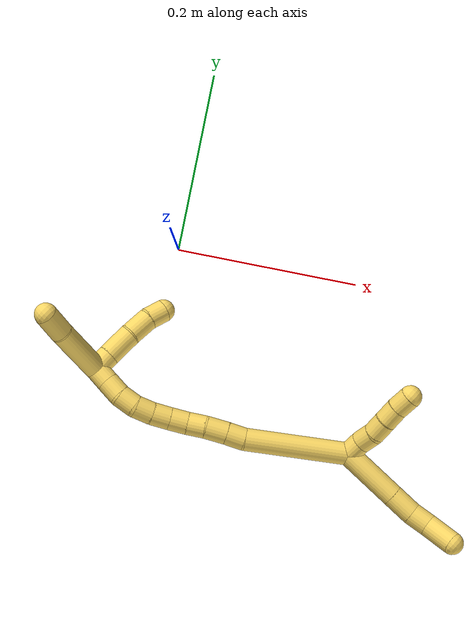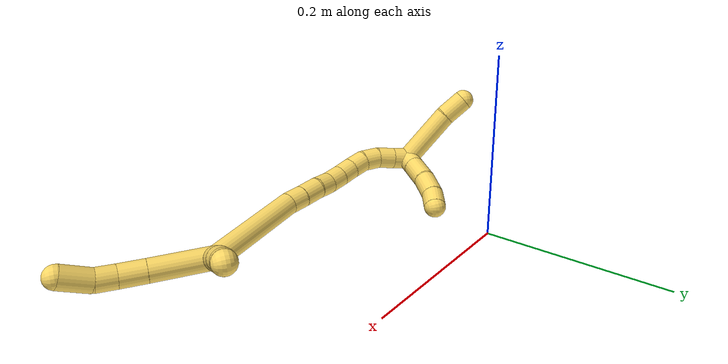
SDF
<sdf version="1.7">
 <world name="default">
  <model name="5">
   <static>0</static>
   <link name="5">
    <collision name="collision-cylinder-e_1_2_8">
     <pose>-0.00032 0.000228 0.033165 -0.00687 -0.009641 3.3e-05</pose>
     <geometry><cylinder><radius>0.0125</radius><length>0.066334</length></cylinder></geometry>
     <surface>
      <friction><ode><mu>1.16</mu><mu2>1.16</mu2><slip1>0</slip1><slip2>0</slip2></ode></friction>
      <contact><ode><kp>1e+06</kp><kd>1</kd><max_vel>0</max_vel><min_depth>0.001</min_depth></ode></contact>
     </surface>
    </collision>
    <visual name="visual-cylinder-e_1_2_8">
     <pose>-0.00032 0.000228 0.033165 -0.00687 -0.009641 3.3e-05</pose>
     <geometry><cylinder><radius>0.0125</radius><length>0.066334</length></cylinder></geometry>
     <material><ambient>1 0.858824 0.4 1</ambient></material>
    </visual>
    <collision name="collision-cylinder-e_2_8_9">
     <pose>-0.000904 0.000712 0.080444 -0.018134 -0.018731 0.00017</pose>
     <geometry><cylinder><radius>0.0125</radius><length>0.028238</length></cylinder></geometry>
     <surface>
      <friction><ode><mu>1.16</mu><mu2>1.16</mu2><slip1>0</slip1><slip2>0</slip2></ode></friction>
      <contact><ode><kp>1e+06</kp><kd>1</kd><max_vel>0</max_vel><min_depth>0.001</min_depth></ode></contact>
     </surface>
    </collision>
    <visual name="visual-cylinder-e_2_8_9">
     <pose>-0.000904 0.000712 0.080444 -0.018134 -0.018731 0.00017</pose>
     <geometry><cylinder><radius>0.0125</radius><length>0.028238</length></cylinder></geometry>
     <material><ambient>1 0.858824 0.4 1</ambient></material>
    </visual>
    <collision name="collision-cylinder-e_3_9_10">
     <pose>-0.001224 0.002863 0.105428 -0.172597 -0.005031 0.000435</pose>
     <geometry><cylinder><radius>0.0125</radius><length>0.022068</length></cylinder></geometry>
     <surface>
      <friction><ode><mu>1.16</mu><mu2>1.16</mu2><slip1>0</slip1><slip2>0</slip2></ode></friction>
      <contact><ode><kp>1e+06</kp><kd>1</kd><max_vel>0</max_vel><min_depth>0.001</min_depth></ode></contact>
     </surface>
    </collision>
    <visual name="visual-cylinder-e_3_9_10">
     <pose>-0.001224 0.002863 0.105428 -0.172597 -0.005031 0.000435</pose>
     <geometry><cylinder><radius>0.0125</radius><length>0.022068</length></cylinder></geometry>
     <material><ambient>1 0.858824 0.4 1</ambient></material>
    </visual>
    <collision name="collision-cylinder-e_4_10_6">
     <pose>-0.005344 0.010131 0.131556 -0.33861 -0.246154 0.042285</pose>
     <geometry><cylinder><radius>0.0125</radius><length>0.03336</length></cylinder></geometry>
     <surface>
      <friction><ode><mu>1.16</mu><mu2>1.16</mu2><slip1>0</slip1><slip2>0</slip2></ode></friction>
      <contact><ode><kp>1e+06</kp><kd>1</kd><max_vel>0</max_vel><min_depth>0.001</min_depth></ode></contact>
     </surface>
    </collision>
    <visual name="visual-cylinder-e_4_10_6">
     <pose>-0.005344 0.010131 0.131556 -0.33861 -0.246154 0.042285</pose>
     <geometry><cylinder><radius>0.0125</radius><length>0.03336</length></cylinder></geometry>
     <material><ambient>1 0.858824 0.4 1</ambient></material>
    </visual>
    <collision name="collision-cylinder-e_1_2_11">
     <pose>0.003206 0.009455 0.000574 -1.51018 0.326362 -0.307467</pose>
     <geometry><cylinder><radius>0.0125</radius><length>0.02</length></cylinder></geometry>
     <surface>
      <friction><ode><mu>1.16</mu><mu2>1.16</mu2><slip1>0</slip1><slip2>0</slip2></ode></friction>
      <contact><ode><kp>1e+06</kp><kd>1</kd><max_vel>0</max_vel><min_depth>0.001</min_depth></ode></contact>
     </surface>
    </collision>
    <visual name="visual-cylinder-e_1_2_11">
     <pose>0.003206 0.009455 0.000574 -1.51018 0.326362 -0.307467</pose>
     <geometry><cylinder><radius>0.0125</radius><length>0.02</length></cylinder></geometry>
     <material><ambient>1 0.858824 0.4 1</ambient></material>
    </visual>
    <collision name="collision-cylinder-e_2_11_12">
     <pose>0.007165 0.028753 0.002742 -1.41022 0.075407 -0.064185</pose>
     <geometry><cylinder><radius>0.0125</radius><length>0.02</length></cylinder></geometry>
     <surface>
      <friction><ode><mu>1.16</mu><mu2>1.16</mu2><slip1>0</slip1><slip2>0</slip2></ode></friction>
      <contact><ode><kp>1e+06</kp><kd>1</kd><max_vel>0</max_vel><min_depth>0.001</min_depth></ode></contact>
     </surface>
    </collision>
    <visual name="visual-cylinder-e_2_11_12">
     <pose>0.007165 0.028753 0.002742 -1.41022 0.075407 -0.064185</pose>
     <geometry><cylinder><radius>0.0125</radius><length>0.02</length></cylinder></geometry>
     <material><ambient>1 0.858824 0.4 1</ambient></material>
    </visual>
    <collision name="collision-cylinder-e_3_12_13">
     <pose>0.010162 0.048337 0.004065 -1.59865 0.226269 -0.232603</pose>
     <geometry><cylinder><radius>0.0125</radius><length>0.02</length></cylinder></geometry>
     <surface>
      <friction><ode><mu>1.16</mu><mu2>1.16</mu2><slip1>0</slip1><slip2>0</slip2></ode></friction>
      <contact><ode><kp>1e+06</kp><kd>1</kd><max_vel>0</max_vel><min_depth>0.001</min_depth></ode></contact>
     </surface>
    </collision>
    <visual name="visual-cylinder-e_3_12_13">
     <pose>0.010162 0.048337 0.004065 -1.59865 0.226269 -0.232603</pose>
     <geometry><cylinder><radius>0.0125</radius><length>0.02</length></cylinder></geometry>
     <material><ambient>1 0.858824 0.4 1</ambient></material>
    </visual>
    <collision name="collision-cylinder-e_4_13_14">
     <pose>0.01541 0.067613 0.00354 -1.59732 0.30514 -0.313212</pose>
     <geometry><cylinder><radius>0.0125</radius><length>0.02</length></cylinder></geometry>
     <surface>
      <friction><ode><mu>1.16</mu><mu2>1.16</mu2><slip1>0</slip1><slip2>0</slip2></ode></friction>
      <contact><ode><kp>1e+06</kp><kd>1</kd><max_vel>0</max_vel><min_depth>0.001</min_depth></ode></contact>
     </surface>
    </collision>
    <visual name="visual-cylinder-e_4_13_14">
     <pose>0.01541 0.067613 0.00354 -1.59732 0.30514 -0.313212</pose>
     <geometry><cylinder><radius>0.0125</radius><length>0.02</length></cylinder></geometry>
     <material><ambient>1 0.858824 0.4 1</ambient></material>
    </visual>
    <collision name="collision-cylinder-e_5_14_5">
     <pose>0.021038 0.086767 0.004064 -1.49028 0.265473 -0.245129</pose>
     <geometry><cylinder><radius>0.0125</radius><length>0.02</length></cylinder></geometry>
     <surface>
      <friction><ode><mu>1.16</mu><mu2>1.16</mu2><slip1>0</slip1><slip2>0</slip2></ode></friction>
      <contact><ode><kp>1e+06</kp><kd>1</kd><max_vel>0</max_vel><min_depth>0.001</min_depth></ode></contact>
     </surface>
    </collision>
    <visual name="visual-cylinder-e_5_14_5">
     <pose>0.021038 0.086767 0.004064 -1.49028 0.265473 -0.245129</pose>
     <geometry><cylinder><radius>0.0125</radius><length>0.02</length></cylinder></geometry>
     <material><ambient>1 0.858824 0.4 1</ambient></material>
    </visual>
    <collision name="collision-cylinder-e_1_2_15">
     <pose>-0.025436 -0.021645 -0.046988 2.70992 -0.456958 -1.6296</pose>
     <geometry><cylinder><radius>0.0125</radius><length>0.115298</length></cylinder></geometry>
     <surface>
      <friction><ode><mu>1.16</mu><mu2>1.16</mu2><slip1>0</slip1><slip2>0</slip2></ode></friction>
      <contact><ode><kp>1e+06</kp><kd>1</kd><max_vel>0</max_vel><min_depth>0.001</min_depth></ode></contact>
     </surface>
    </collision>
    <visual name="visual-cylinder-e_1_2_15">
     <pose>-0.025436 -0.021645 -0.046988 2.70992 -0.456958 -1.6296</pose>
     <geometry><cylinder><radius>0.0125</radius><length>0.115298</length></cylinder></geometry>
     <material><ambient>1 0.858824 0.4 1</ambient></material>
    </visual>
    <collision name="collision-cylinder-e_2_15_16">
     <pose>-0.054164 -0.046039 -0.103298 2.85482 -0.326646 -1.70265</pose>
     <geometry><cylinder><radius>0.0125</radius><length>0.02052</length></cylinder></geometry>
     <surface>
      <friction><ode><mu>1.16</mu><mu2>1.16</mu2><slip1>0</slip1><slip2>0</slip2></ode></friction>
      <contact><ode><kp>1e+06</kp><kd>1</kd><max_vel>0</max_vel><min_depth>0.001</min_depth></ode></contact>
     </surface>
    </collision>
    <visual name="visual-cylinder-e_2_15_16">
     <pose>-0.054164 -0.046039 -0.103298 2.85482 -0.326646 -1.70265</pose>
     <geometry><cylinder><radius>0.0125</radius><length>0.02052</length></cylinder></geometry>
     <material><ambient>1 0.858824 0.4 1</ambient></material>
    </visual>
    <collision name="collision-cylinder-e_3_16_17">
     <pose>-0.061595 -0.052323 -0.123199 2.81917 -0.355282 -1.66958</pose>
     <geometry><cylinder><radius>0.0125</radius><length>0.023797</length></cylinder></geometry>
     <surface>
      <friction><ode><mu>1.16</mu><mu2>1.16</mu2><slip1>0</slip1><slip2>0</slip2></ode></friction>
      <contact><ode><kp>1e+06</kp><kd>1</kd><max_vel>0</max_vel><min_depth>0.001</min_depth></ode></contact>
     </surface>
    </collision>
    <visual name="visual-cylinder-e_3_16_17">
     <pose>-0.061595 -0.052323 -0.123199 2.81917 -0.355282 -1.66958</pose>
     <geometry><cylinder><radius>0.0125</radius><length>0.023797</length></cylinder></geometry>
     <material><ambient>1 0.858824 0.4 1</ambient></material>
    </visual>
    <collision name="collision-cylinder-e_4_17_18">
     <pose>-0.068604 -0.060222 -0.142324 2.66937 -0.290635 -1.09295</pose>
     <geometry><cylinder><radius>0.0125</radius><length>0.020028</length></cylinder></geometry>
     <surface>
      <friction><ode><mu>1.16</mu><mu2>1.16</mu2><slip1>0</slip1><slip2>0</slip2></ode></friction>
      <contact><ode><kp>1e+06</kp><kd>1</kd><max_vel>0</max_vel><min_depth>0.001</min_depth></ode></contact>
     </surface>
    </collision>
    <visual name="visual-cylinder-e_4_17_18">
     <pose>-0.068604 -0.060222 -0.142324 2.66937 -0.290635 -1.09295</pose>
     <geometry><cylinder><radius>0.0125</radius><length>0.020028</length></cylinder></geometry>
     <material><ambient>1 0.858824 0.4 1</ambient></material>
    </visual>
    <collision name="collision-cylinder-e_5_18_19">
     <pose>-0.075291 -0.067632 -0.159752 2.81128 -0.386103 -1.72957</pose>
     <geometry><cylinder><radius>0.0125</radius><length>0.020276</length></cylinder></geometry>
     <surface>
      <friction><ode><mu>1.16</mu><mu2>1.16</mu2><slip1>0</slip1><slip2>0</slip2></ode></friction>
      <contact><ode><kp>1e+06</kp><kd>1</kd><max_vel>0</max_vel><min_depth>0.001</min_depth></ode></contact>
     </surface>
    </collision>
    <visual name="visual-cylinder-e_5_18_19">
     <pose>-0.075291 -0.067632 -0.159752 2.81128 -0.386103 -1.72957</pose>
     <geometry><cylinder><radius>0.0125</radius><length>0.020276</length></cylinder></geometry>
     <material><ambient>1 0.858824 0.4 1</ambient></material>
    </visual>
    <collision name="collision-cylinder-e_6_19_20">
     <pose>-0.083211 -0.073091 -0.177471 2.87496 -0.421119 -2.02082</pose>
     <geometry><cylinder><radius>0.0125</radius><length>0.020071</length></cylinder></geometry>
     <surface>
      <friction><ode><mu>1.16</mu><mu2>1.16</mu2><slip1>0</slip1><slip2>0</slip2></ode></friction>
      <contact><ode><kp>1e+06</kp><kd>1</kd><max_vel>0</max_vel><min_depth>0.001</min_depth></ode></contact>
     </surface>
    </collision>
    <visual name="visual-cylinder-e_6_19_20">
     <pose>-0.083211 -0.073091 -0.177471 2.87496 -0.421119 -2.02082</pose>
     <geometry><cylinder><radius>0.0125</radius><length>0.020071</length></cylinder></geometry>
     <material><ambient>1 0.858824 0.4 1</ambient></material>
    </visual>
    <collision name="collision-cylinder-e_7_20_21">
     <pose>-0.090976 -0.076804 -0.195522 3.00142 -0.374838 -2.43255</pose>
     <geometry><cylinder><radius>0.0125</radius><length>0.020004</length></cylinder></geometry>
     <surface>
      <friction><ode><mu>1.16</mu><mu2>1.16</mu2><slip1>0</slip1><slip2>0</slip2></ode></friction>
      <contact><ode><kp>1e+06</kp><kd>1</kd><max_vel>0</max_vel><min_depth>0.001</min_depth></ode></contact>
     </surface>
    </collision>
    <visual name="visual-cylinder-e_7_20_21">
     <pose>-0.090976 -0.076804 -0.195522 3.00142 -0.374838 -2.43255</pose>
     <geometry><cylinder><radius>0.0125</radius><length>0.020004</length></cylinder></geometry>
     <material><ambient>1 0.858824 0.4 1</ambient></material>
    </visual>
    <collision name="collision-cylinder-e_8_21_22">
     <pose>-0.095383 -0.079165 -0.214656 3.03514 -0.074576 -1.22179</pose>
     <geometry><cylinder><radius>0.0125</radius><length>0.020005</length></cylinder></geometry>
     <surface>
      <friction><ode><mu>1.16</mu><mu2>1.16</mu2><slip1>0</slip1><slip2>0</slip2></ode></friction>
      <contact><ode><kp>1e+06</kp><kd>1</kd><max_vel>0</max_vel><min_depth>0.001</min_depth></ode></contact>
     </surface>
    </collision>
    <visual name="visual-cylinder-e_8_21_22">
     <pose>-0.095383 -0.079165 -0.214656 3.03514 -0.074576 -1.22179</pose>
     <geometry><cylinder><radius>0.0125</radius><length>0.020005</length></cylinder></geometry>
     <material><ambient>1 0.858824 0.4 1</ambient></material>
    </visual>
    <collision name="collision-cylinder-e_9_22_23">
     <pose>-0.094393 -0.080656 -0.234414 3.0978 0.17433 2.65043</pose>
     <geometry><cylinder><radius>0.0125</radius><length>0.02</length></cylinder></geometry>
     <surface>
      <friction><ode><mu>1.16</mu><mu2>1.16</mu2><slip1>0</slip1><slip2>0</slip2></ode></friction>
      <contact><ode><kp>1e+06</kp><kd>1</kd><max_vel>0</max_vel><min_depth>0.001</min_depth></ode></contact>
     </surface>
    </collision>
    <visual name="visual-cylinder-e_9_22_23">
     <pose>-0.094393 -0.080656 -0.234414 3.0978 0.17433 2.65043</pose>
     <geometry><cylinder><radius>0.0125</radius><length>0.02</length></cylinder></geometry>
     <material><ambient>1 0.858824 0.4 1</ambient></material>
    </visual>
    <collision name="collision-cylinder-e_10_23_1">
     <pose>-0.090926 -0.081406 -0.254097 3.10917 0.174209 2.77446</pose>
     <geometry><cylinder><radius>0.0125</radius><length>0.02</length></cylinder></geometry>
     <surface>
      <friction><ode><mu>1.16</mu><mu2>1.16</mu2><slip1>0</slip1><slip2>0</slip2></ode></friction>
      <contact><ode><kp>1e+06</kp><kd>1</kd><max_vel>0</max_vel><min_depth>0.001</min_depth></ode></contact>
     </surface>
    </collision>
    <visual name="visual-cylinder-e_10_23_1">
     <pose>-0.090926 -0.081406 -0.254097 3.10917 0.174209 2.77446</pose>
     <geometry><cylinder><radius>0.0125</radius><length>0.02</length></cylinder></geometry>
     <material><ambient>1 0.858824 0.4 1</ambient></material>
    </visual>
    <collision name="collision-cylinder-e_1_1_24">
     <pose>-0.081386 -0.075185 -0.264029 -1.58437 0.873365 -0.883816</pose>
     <geometry><cylinder><radius>0.0125</radius><length>0.020369</length></cylinder></geometry>
     <surface>
      <friction><ode><mu>1.16</mu><mu2>1.16</mu2><slip1>0</slip1><slip2>0</slip2></ode></friction>
      <contact><ode><kp>1e+06</kp><kd>1</kd><max_vel>0</max_vel><min_depth>0.001</min_depth></ode></contact>
     </surface>
    </collision>
    <visual name="visual-cylinder-e_1_1_24">
     <pose>-0.081386 -0.075185 -0.264029 -1.58437 0.873365 -0.883816</pose>
     <geometry><cylinder><radius>0.0125</radius><length>0.020369</length></cylinder></geometry>
     <material><ambient>1 0.858824 0.4 1</ambient></material>
    </visual>
    <collision name="collision-cylinder-e_2_24_25">
     <pose>-0.061628 -0.057732 -0.26357 -1.52063 0.830207 -0.793792</pose>
     <geometry><cylinder><radius>0.0125</radius><length>0.032386</length></cylinder></geometry>
     <surface>
      <friction><ode><mu>1.16</mu><mu2>1.16</mu2><slip1>0</slip1><slip2>0</slip2></ode></friction>
      <contact><ode><kp>1e+06</kp><kd>1</kd><max_vel>0</max_vel><min_depth>0.001</min_depth></ode></contact>
     </surface>
    </collision>
    <visual name="visual-cylinder-e_2_24_25">
     <pose>-0.061628 -0.057732 -0.26357 -1.52063 0.830207 -0.793792</pose>
     <geometry><cylinder><radius>0.0125</radius><length>0.032386</length></cylinder></geometry>
     <material><ambient>1 0.858824 0.4 1</ambient></material>
    </visual>
    <collision name="collision-cylinder-e_3_25_26">
     <pose>-0.038428 -0.039416 -0.262023 -1.43676 0.984464 -0.876757</pose>
     <geometry><cylinder><radius>0.0125</radius><length>0.027007</length></cylinder></geometry>
     <surface>
      <friction><ode><mu>1.16</mu><mu2>1.16</mu2><slip1>0</slip1><slip2>0</slip2></ode></friction>
      <contact><ode><kp>1e+06</kp><kd>1</kd><max_vel>0</max_vel><min_depth>0.001</min_depth></ode></contact>
     </surface>
    </collision>
    <visual name="visual-cylinder-e_3_25_26">
     <pose>-0.038428 -0.039416 -0.262023 -1.43676 0.984464 -0.876757</pose>
     <geometry><cylinder><radius>0.0125</radius><length>0.027007</length></cylinder></geometry>
     <material><ambient>1 0.858824 0.4 1</ambient></material>
    </visual>
    <collision name="collision-cylinder-e_4_26_4">
     <pose>-0.01879 -0.027131 -0.258164 -1.04051 0.977527 -0.591471</pose>
     <geometry><cylinder><radius>0.0125</radius><length>0.020238</length></cylinder></geometry>
     <surface>
      <friction><ode><mu>1.16</mu><mu2>1.16</mu2><slip1>0</slip1><slip2>0</slip2></ode></friction>
      <contact><ode><kp>1e+06</kp><kd>1</kd><max_vel>0</max_vel><min_depth>0.001</min_depth></ode></contact>
     </surface>
    </collision>
    <visual name="visual-cylinder-e_4_26_4">
     <pose>-0.01879 -0.027131 -0.258164 -1.04051 0.977527 -0.591471</pose>
     <geometry><cylinder><radius>0.0125</radius><length>0.020238</length></cylinder></geometry>
     <material><ambient>1 0.858824 0.4 1</ambient></material>
    </visual>
    <collision name="collision-cylinder-e_1_1_27">
     <pose>-0.107186 -0.063875 -0.288658 -2.51613 -0.533152 1.40264</pose>
     <geometry><cylinder><radius>0.0125</radius><length>0.070805</length></cylinder></geometry>
     <surface>
      <friction><ode><mu>1.16</mu><mu2>1.16</mu2><slip1>0</slip1><slip2>0</slip2></ode></friction>
      <contact><ode><kp>1e+06</kp><kd>1</kd><max_vel>0</max_vel><min_depth>0.001</min_depth></ode></contact>
     </surface>
    </collision>
    <visual name="visual-cylinder-e_1_1_27">
     <pose>-0.107186 -0.063875 -0.288658 -2.51613 -0.533152 1.40264</pose>
     <geometry><cylinder><radius>0.0125</radius><length>0.070805</length></cylinder></geometry>
     <material><ambient>1 0.858824 0.4 1</ambient></material>
    </visual>
    <collision name="collision-cylinder-e_2_27_3">
     <pose>-0.130968 -0.039191 -0.324902 -2.60647 -0.40775 1.29235</pose>
     <geometry><cylinder><radius>0.0125</radius><length>0.029195</length></cylinder></geometry>
     <surface>
      <friction><ode><mu>1.16</mu><mu2>1.16</mu2><slip1>0</slip1><slip2>0</slip2></ode></friction>
      <contact><ode><kp>1e+06</kp><kd>1</kd><max_vel>0</max_vel><min_depth>0.001</min_depth></ode></contact>
     </surface>
    </collision>
    <visual name="visual-cylinder-e_2_27_3">
     <pose>-0.130968 -0.039191 -0.324902 -2.60647 -0.40775 1.29235</pose>
     <geometry><cylinder><radius>0.0125</radius><length>0.029195</length></cylinder></geometry>
     <material><ambient>1 0.858824 0.4 1</ambient></material>
    </visual>
    <collision name="collision-sphere-3">
     <pose>-0.136756 -0.032357 -0.336429 0 -0 0</pose>
     <geometry><sphere><radius>0.0125</radius></sphere></geometry>
     <surface>
      <friction><ode><mu>1.16</mu><mu2>1.16</mu2><slip1>0</slip1><slip2>0</slip2></ode></friction>
      <contact><ode><kp>1e+06</kp><kd>1</kd><max_vel>0</max_vel><min_depth>0.001</min_depth></ode></contact>
     </surface>
    </collision>
    <visual name="visual-sphere-3">
     <pose>-0.136756 -0.032357 -0.336429 0 -0 0</pose>
     <geometry><sphere><radius>0.0125</radius></sphere></geometry>
     <material><ambient>1 0.858824 0.4 1</ambient></material>
    </visual>
    <collision name="collision-sphere-27">
     <pose>-0.125179 -0.046024 -0.313375 0 -0 0</pose>
     <geometry><sphere><radius>0.0125</radius></sphere></geometry>
     <surface>
      <friction><ode><mu>1.16</mu><mu2>1.16</mu2><slip1>0</slip1><slip2>0</slip2></ode></friction>
      <contact><ode><kp>1e+06</kp><kd>1</kd><max_vel>0</max_vel><min_depth>0.001</min_depth></ode></contact>
     </surface>
    </collision>
    <visual name="visual-sphere-27">
     <pose>-0.125179 -0.046024 -0.313375 0 -0 0</pose>
     <geometry><sphere><radius>0.0125</radius></sphere></geometry>
     <material><ambient>1 0.858824 0.4 1</ambient></material>
    </visual>
    <collision name="collision-sphere-4">
     <pose>-0.010401 -0.02225 -0.255302 0 -0 0</pose>
     <geometry><sphere><radius>0.0125</radius></sphere></geometry>
     <surface>
      <friction><ode><mu>1.16</mu><mu2>1.16</mu2><slip1>0</slip1><slip2>0</slip2></ode></friction>
      <contact><ode><kp>1e+06</kp><kd>1</kd><max_vel>0</max_vel><min_depth>0.001</min_depth></ode></contact>
     </surface>
    </collision>
    <visual name="visual-sphere-4">
     <pose>-0.010401 -0.02225 -0.255302 0 -0 0</pose>
     <geometry><sphere><radius>0.0125</radius></sphere></geometry>
     <material><ambient>1 0.858824 0.4 1</ambient></material>
    </visual>
    <collision name="collision-sphere-26">
     <pose>-0.02718 -0.032011 -0.261025 0 -0 0</pose>
     <geometry><sphere><radius>0.0125</radius></sphere></geometry>
     <surface>
      <friction><ode><mu>1.16</mu><mu2>1.16</mu2><slip1>0</slip1><slip2>0</slip2></ode></friction>
      <contact><ode><kp>1e+06</kp><kd>1</kd><max_vel>0</max_vel><min_depth>0.001</min_depth></ode></contact>
     </surface>
    </collision>
    <visual name="visual-sphere-26">
     <pose>-0.02718 -0.032011 -0.261025 0 -0 0</pose>
     <geometry><sphere><radius>0.0125</radius></sphere></geometry>
     <material><ambient>1 0.858824 0.4 1</ambient></material>
    </visual>
    <collision name="collision-sphere-25">
     <pose>-0.049676 -0.04682 -0.263022 0 -0 0</pose>
     <geometry><sphere><radius>0.0125</radius></sphere></geometry>
     <surface>
      <friction><ode><mu>1.16</mu><mu2>1.16</mu2><slip1>0</slip1><slip2>0</slip2></ode></friction>
      <contact><ode><kp>1e+06</kp><kd>1</kd><max_vel>0</max_vel><min_depth>0.001</min_depth></ode></contact>
     </surface>
    </collision>
    <visual name="visual-sphere-25">
     <pose>-0.049676 -0.04682 -0.263022 0 -0 0</pose>
     <geometry><sphere><radius>0.0125</radius></sphere></geometry>
     <material><ambient>1 0.858824 0.4 1</ambient></material>
    </visual>
    <collision name="collision-sphere-24">
     <pose>-0.073579 -0.068644 -0.264118 0 -0 0</pose>
     <geometry><sphere><radius>0.0125</radius></sphere></geometry>
     <surface>
      <friction><ode><mu>1.16</mu><mu2>1.16</mu2><slip1>0</slip1><slip2>0</slip2></ode></friction>
      <contact><ode><kp>1e+06</kp><kd>1</kd><max_vel>0</max_vel><min_depth>0.001</min_depth></ode></contact>
     </surface>
    </collision>
    <visual name="visual-sphere-24">
     <pose>-0.073579 -0.068644 -0.264118 0 -0 0</pose>
     <geometry><sphere><radius>0.0125</radius></sphere></geometry>
     <material><ambient>1 0.858824 0.4 1</ambient></material>
    </visual>
    <collision name="collision-sphere-1">
     <pose>-0.089192 -0.081725 -0.26394 0 -0 0</pose>
     <geometry><sphere><radius>0.0125</radius></sphere></geometry>
     <surface>
      <friction><ode><mu>1.16</mu><mu2>1.16</mu2><slip1>0</slip1><slip2>0</slip2></ode></friction>
      <contact><ode><kp>1e+06</kp><kd>1</kd><max_vel>0</max_vel><min_depth>0.001</min_depth></ode></contact>
     </surface>
    </collision>
    <visual name="visual-sphere-1">
     <pose>-0.089192 -0.081725 -0.26394 0 -0 0</pose>
     <geometry><sphere><radius>0.0125</radius></sphere></geometry>
     <material><ambient>1 0.858824 0.4 1</ambient></material>
    </visual>
    <collision name="collision-sphere-23">
     <pose>-0.092659 -0.081087 -0.244253 0 -0 0</pose>
     <geometry><sphere><radius>0.0125</radius></sphere></geometry>
     <surface>
      <friction><ode><mu>1.16</mu><mu2>1.16</mu2><slip1>0</slip1><slip2>0</slip2></ode></friction>
      <contact><ode><kp>1e+06</kp><kd>1</kd><max_vel>0</max_vel><min_depth>0.001</min_depth></ode></contact>
     </surface>
    </collision>
    <visual name="visual-sphere-23">
     <pose>-0.092659 -0.081087 -0.244253 0 -0 0</pose>
     <geometry><sphere><radius>0.0125</radius></sphere></geometry>
     <material><ambient>1 0.858824 0.4 1</ambient></material>
    </visual>
    <collision name="collision-sphere-22">
     <pose>-0.096128 -0.080224 -0.224575 0 -0 0</pose>
     <geometry><sphere><radius>0.0125</radius></sphere></geometry>
     <surface>
      <friction><ode><mu>1.16</mu><mu2>1.16</mu2><slip1>0</slip1><slip2>0</slip2></ode></friction>
      <contact><ode><kp>1e+06</kp><kd>1</kd><max_vel>0</max_vel><min_depth>0.001</min_depth></ode></contact>
     </surface>
    </collision>
    <visual name="visual-sphere-22">
     <pose>-0.096128 -0.080224 -0.224575 0 -0 0</pose>
     <geometry><sphere><radius>0.0125</radius></sphere></geometry>
     <material><ambient>1 0.858824 0.4 1</ambient></material>
    </visual>
    <collision name="collision-sphere-21">
     <pose>-0.094638 -0.078105 -0.204738 0 -0 0</pose>
     <geometry><sphere><radius>0.0125</radius></sphere></geometry>
     <surface>
      <friction><ode><mu>1.16</mu><mu2>1.16</mu2><slip1>0</slip1><slip2>0</slip2></ode></friction>
      <contact><ode><kp>1e+06</kp><kd>1</kd><max_vel>0</max_vel><min_depth>0.001</min_depth></ode></contact>
     </surface>
    </collision>
    <visual name="visual-sphere-21">
     <pose>-0.094638 -0.078105 -0.204738 0 -0 0</pose>
     <geometry><sphere><radius>0.0125</radius></sphere></geometry>
     <material><ambient>1 0.858824 0.4 1</ambient></material>
    </visual>
    <collision name="collision-sphere-11">
     <pose>0.006412 0.01891 0.001148 0 -0 0</pose>
     <geometry><sphere><radius>0.0125</radius></sphere></geometry>
     <surface>
      <friction><ode><mu>1.16</mu><mu2>1.16</mu2><slip1>0</slip1><slip2>0</slip2></ode></friction>
      <contact><ode><kp>1e+06</kp><kd>1</kd><max_vel>0</max_vel><min_depth>0.001</min_depth></ode></contact>
     </surface>
    </collision>
    <visual name="visual-sphere-11">
     <pose>0.006412 0.01891 0.001148 0 -0 0</pose>
     <geometry><sphere><radius>0.0125</radius></sphere></geometry>
     <material><ambient>1 0.858824 0.4 1</ambient></material>
    </visual>
    <collision name="collision-sphere-6">
     <pose>-0.009408 0.015505 0.146815 0 -0 0</pose>
     <geometry><sphere><radius>0.0125</radius></sphere></geometry>
     <surface>
      <friction><ode><mu>1.16</mu><mu2>1.16</mu2><slip1>0</slip1><slip2>0</slip2></ode></friction>
      <contact><ode><kp>1e+06</kp><kd>1</kd><max_vel>0</max_vel><min_depth>0.001</min_depth></ode></contact>
     </surface>
    </collision>
    <visual name="visual-sphere-6">
     <pose>-0.009408 0.015505 0.146815 0 -0 0</pose>
     <geometry><sphere><radius>0.0125</radius></sphere></geometry>
     <material><ambient>1 0.858824 0.4 1</ambient></material>
    </visual>
    <collision name="collision-sphere-10">
     <pose>-0.001279 0.004758 0.116298 0 -0 0</pose>
     <geometry><sphere><radius>0.0125</radius></sphere></geometry>
     <surface>
      <friction><ode><mu>1.16</mu><mu2>1.16</mu2><slip1>0</slip1><slip2>0</slip2></ode></friction>
      <contact><ode><kp>1e+06</kp><kd>1</kd><max_vel>0</max_vel><min_depth>0.001</min_depth></ode></contact>
     </surface>
    </collision>
    <visual name="visual-sphere-10">
     <pose>-0.001279 0.004758 0.116298 0 -0 0</pose>
     <geometry><sphere><radius>0.0125</radius></sphere></geometry>
     <material><ambient>1 0.858824 0.4 1</ambient></material>
    </visual>
    <collision name="collision-sphere-9">
     <pose>-0.001168 0.000968 0.094558 0 -0 0</pose>
     <geometry><sphere><radius>0.0125</radius></sphere></geometry>
     <surface>
      <friction><ode><mu>1.16</mu><mu2>1.16</mu2><slip1>0</slip1><slip2>0</slip2></ode></friction>
      <contact><ode><kp>1e+06</kp><kd>1</kd><max_vel>0</max_vel><min_depth>0.001</min_depth></ode></contact>
     </surface>
    </collision>
    <visual name="visual-sphere-9">
     <pose>-0.001168 0.000968 0.094558 0 -0 0</pose>
     <geometry><sphere><radius>0.0125</radius></sphere></geometry>
     <material><ambient>1 0.858824 0.4 1</ambient></material>
    </visual>
    <collision name="collision-sphere-2">
     <geometry><sphere><radius>0.0125</radius></sphere></geometry>
     <surface>
      <friction><ode><mu>1.16</mu><mu2>1.16</mu2><slip1>0</slip1><slip2>0</slip2></ode></friction>
      <contact><ode><kp>1e+06</kp><kd>1</kd><max_vel>0</max_vel><min_depth>0.001</min_depth></ode></contact>
     </surface>
    </collision>
    <visual name="visual-sphere-2">
     <geometry><sphere><radius>0.0125</radius></sphere></geometry>
     <material><ambient>1 0.858824 0.4 1</ambient></material>
    </visual>
    <collision name="collision-sphere-19">
     <pose>-0.079109 -0.070678 -0.168636 0 -0 0</pose>
     <geometry><sphere><radius>0.0125</radius></sphere></geometry>
     <surface>
      <friction><ode><mu>1.16</mu><mu2>1.16</mu2><slip1>0</slip1><slip2>0</slip2></ode></friction>
      <contact><ode><kp>1e+06</kp><kd>1</kd><max_vel>0</max_vel><min_depth>0.001</min_depth></ode></contact>
     </surface>
    </collision>
    <visual name="visual-sphere-19">
     <pose>-0.079109 -0.070678 -0.168636 0 -0 0</pose>
     <geometry><sphere><radius>0.0125</radius></sphere></geometry>
     <material><ambient>1 0.858824 0.4 1</ambient></material>
    </visual>
    <collision name="collision-sphere-8">
     <pose>-0.00064 0.000456 0.066329 0 -0 0</pose>
     <geometry><sphere><radius>0.0125</radius></sphere></geometry>
     <surface>
      <friction><ode><mu>1.16</mu><mu2>1.16</mu2><slip1>0</slip1><slip2>0</slip2></ode></friction>
      <contact><ode><kp>1e+06</kp><kd>1</kd><max_vel>0</max_vel><min_depth>0.001</min_depth></ode></contact>
     </surface>
    </collision>
    <visual name="visual-sphere-8">
     <pose>-0.00064 0.000456 0.066329 0 -0 0</pose>
     <geometry><sphere><radius>0.0125</radius></sphere></geometry>
     <material><ambient>1 0.858824 0.4 1</ambient></material>
    </visual>
    <collision name="collision-sphere-12">
     <pose>0.007919 0.038596 0.004336 0 -0 0</pose>
     <geometry><sphere><radius>0.0125</radius></sphere></geometry>
     <surface>
      <friction><ode><mu>1.16</mu><mu2>1.16</mu2><slip1>0</slip1><slip2>0</slip2></ode></friction>
      <contact><ode><kp>1e+06</kp><kd>1</kd><max_vel>0</max_vel><min_depth>0.001</min_depth></ode></contact>
     </surface>
    </collision>
    <visual name="visual-sphere-12">
     <pose>0.007919 0.038596 0.004336 0 -0 0</pose>
     <geometry><sphere><radius>0.0125</radius></sphere></geometry>
     <material><ambient>1 0.858824 0.4 1</ambient></material>
    </visual>
    <collision name="collision-sphere-13">
     <pose>0.012406 0.058079 0.003793 0 -0 0</pose>
     <geometry><sphere><radius>0.0125</radius></sphere></geometry>
     <surface>
      <friction><ode><mu>1.16</mu><mu2>1.16</mu2><slip1>0</slip1><slip2>0</slip2></ode></friction>
      <contact><ode><kp>1e+06</kp><kd>1</kd><max_vel>0</max_vel><min_depth>0.001</min_depth></ode></contact>
     </surface>
    </collision>
    <visual name="visual-sphere-13">
     <pose>0.012406 0.058079 0.003793 0 -0 0</pose>
     <geometry><sphere><radius>0.0125</radius></sphere></geometry>
     <material><ambient>1 0.858824 0.4 1</ambient></material>
    </visual>
    <collision name="collision-sphere-14">
     <pose>0.018414 0.077148 0.003288 0 -0 0</pose>
     <geometry><sphere><radius>0.0125</radius></sphere></geometry>
     <surface>
      <friction><ode><mu>1.16</mu><mu2>1.16</mu2><slip1>0</slip1><slip2>0</slip2></ode></friction>
      <contact><ode><kp>1e+06</kp><kd>1</kd><max_vel>0</max_vel><min_depth>0.001</min_depth></ode></contact>
     </surface>
    </collision>
    <visual name="visual-sphere-14">
     <pose>0.018414 0.077148 0.003288 0 -0 0</pose>
     <geometry><sphere><radius>0.0125</radius></sphere></geometry>
     <material><ambient>1 0.858824 0.4 1</ambient></material>
    </visual>
    <collision name="collision-sphere-5">
     <pose>0.023661 0.096385 0.00484 0 -0 0</pose>
     <geometry><sphere><radius>0.0125</radius></sphere></geometry>
     <surface>
      <friction><ode><mu>1.16</mu><mu2>1.16</mu2><slip1>0</slip1><slip2>0</slip2></ode></friction>
      <contact><ode><kp>1e+06</kp><kd>1</kd><max_vel>0</max_vel><min_depth>0.001</min_depth></ode></contact>
     </surface>
    </collision>
    <visual name="visual-sphere-5">
     <pose>0.023661 0.096385 0.00484 0 -0 0</pose>
     <geometry><sphere><radius>0.0125</radius></sphere></geometry>
     <material><ambient>1 0.858824 0.4 1</ambient></material>
    </visual>
    <collision name="collision-sphere-15">
     <pose>-0.050872 -0.043291 -0.093977 0 -0 0</pose>
     <geometry><sphere><radius>0.0125</radius></sphere></geometry>
     <surface>
      <friction><ode><mu>1.16</mu><mu2>1.16</mu2><slip1>0</slip1><slip2>0</slip2></ode></friction>
      <contact><ode><kp>1e+06</kp><kd>1</kd><max_vel>0</max_vel><min_depth>0.001</min_depth></ode></contact>
     </surface>
    </collision>
    <visual name="visual-sphere-15">
     <pose>-0.050872 -0.043291 -0.093977 0 -0 0</pose>
     <geometry><sphere><radius>0.0125</radius></sphere></geometry>
     <material><ambient>1 0.858824 0.4 1</ambient></material>
    </visual>
    <collision name="collision-sphere-16">
     <pose>-0.057456 -0.048788 -0.112619 0 -0 0</pose>
     <geometry><sphere><radius>0.0125</radius></sphere></geometry>
     <surface>
      <friction><ode><mu>1.16</mu><mu2>1.16</mu2><slip1>0</slip1><slip2>0</slip2></ode></friction>
      <contact><ode><kp>1e+06</kp><kd>1</kd><max_vel>0</max_vel><min_depth>0.001</min_depth></ode></contact>
     </surface>
    </collision>
    <visual name="visual-sphere-16">
     <pose>-0.057456 -0.048788 -0.112619 0 -0 0</pose>
     <geometry><sphere><radius>0.0125</radius></sphere></geometry>
     <material><ambient>1 0.858824 0.4 1</ambient></material>
    </visual>
    <collision name="collision-sphere-17">
     <pose>-0.065734 -0.055858 -0.13378 0 -0 0</pose>
     <geometry><sphere><radius>0.0125</radius></sphere></geometry>
     <surface>
      <friction><ode><mu>1.16</mu><mu2>1.16</mu2><slip1>0</slip1><slip2>0</slip2></ode></friction>
      <contact><ode><kp>1e+06</kp><kd>1</kd><max_vel>0</max_vel><min_depth>0.001</min_depth></ode></contact>
     </surface>
    </collision>
    <visual name="visual-sphere-17">
     <pose>-0.065734 -0.055858 -0.13378 0 -0 0</pose>
     <geometry><sphere><radius>0.0125</radius></sphere></geometry>
     <material><ambient>1 0.858824 0.4 1</ambient></material>
    </visual>
    <collision name="collision-sphere-18">
     <pose>-0.071474 -0.064586 -0.150869 0 -0 0</pose>
     <geometry><sphere><radius>0.0125</radius></sphere></geometry>
     <surface>
      <friction><ode><mu>1.16</mu><mu2>1.16</mu2><slip1>0</slip1><slip2>0</slip2></ode></friction>
      <contact><ode><kp>1e+06</kp><kd>1</kd><max_vel>0</max_vel><min_depth>0.001</min_depth></ode></contact>
     </surface>
    </collision>
    <visual name="visual-sphere-18">
     <pose>-0.071474 -0.064586 -0.150869 0 -0 0</pose>
     <geometry><sphere><radius>0.0125</radius></sphere></geometry>
     <material><ambient>1 0.858824 0.4 1</ambient></material>
    </visual>
    <collision name="collision-sphere-20">
     <pose>-0.087314 -0.075504 -0.186306 0 -0 0</pose>
     <geometry><sphere><radius>0.0125</radius></sphere></geometry>
     <surface>
      <friction><ode><mu>1.16</mu><mu2>1.16</mu2><slip1>0</slip1><slip2>0</slip2></ode></friction>
      <contact><ode><kp>1e+06</kp><kd>1</kd><max_vel>0</max_vel><min_depth>0.001</min_depth></ode></contact>
     </surface>
    </collision>
    <visual name="visual-sphere-20">
     <pose>-0.087314 -0.075504 -0.186306 0 -0 0</pose>
     <geometry><sphere><radius>0.0125</radius></sphere></geometry>
     <material><ambient>1 0.858824 0.4 1</ambient></material>
    </visual>
    <inertial>
     <pose>-0.04415 -0.027357 -0.110332 0 -0 0</pose>
     <mass>0.75</mass>
     <inertia><ixx>-6.4e-05</ixx><ixy>0</ixy><ixz>0</ixz><iyy>-7e-06</iyy><iyz>0</iyz><izz>7.7e-05</izz></inertia>
    </inertial>
   </link>
   <pose>0.226665 -0.185395 0.012896 1.60095 0.870991 1.03722</pose>
  </model>
 </world>
</sdf>
